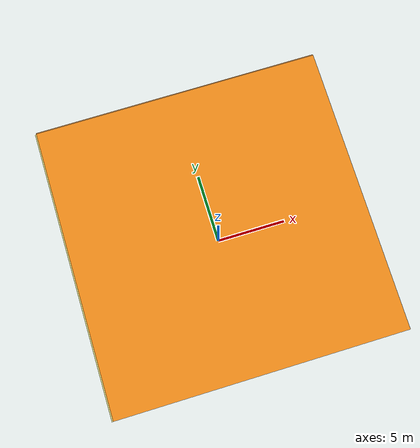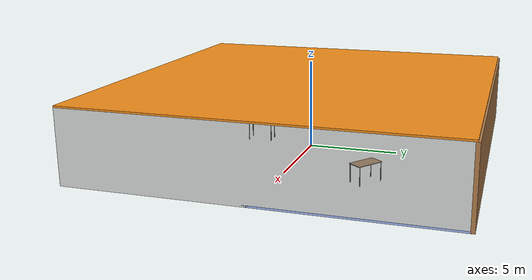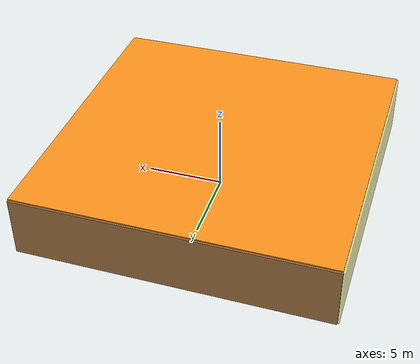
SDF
<sdf version="1.4">
 <world name="default">
  <physics type="ode">
   <max_step_size>0.001</max_step_size>
   <real_time_factor>1</real_time_factor>
   <real_time_update_rate>1000</real_time_update_rate>
   <gravity>0 0 -9.8</gravity>
  </physics>
  <scene><ambient>0.4 0.4 0.4 1</ambient><background>0.7 0.7 0.7 1</background><shadows>1</shadows></scene>
  <model name="Surrounding">
   <static>1</static>
   <link name="Ceiling">
    <collision name="Ceiling_Collision"><geometry><box><size>20 20 0.1</size></box></geometry></collision>
    <visual name="Ceiling_Visual">
     <geometry><box><size>20 20 0.1</size></box></geometry>
     <material>
      <script><uri>file://media/materials/scripts/gazebo.material</uri><name>Gazebo/Orange</name></script>
     </material>
    </visual>
    <pose>0 0 4.05 0 0 0</pose>
   </link>
   <link name="Wall_South">
    <collision name="Wall_South_Collision">
     <geometry><box><size>20 0 4</size></box></geometry>
     <pose>0 0 2 0 -0 0</pose>
    </collision>
    <visual name="Wall_South_Visual">
     <pose>0 0 2 0 -0 0</pose>
     <geometry><box><size>20 0 4</size></box></geometry>
     <material>
      <script>
       <uri>file://media/materials/scripts/gazebo.material</uri>
       <name>Gazebo/YellowTransparent</name>
      </script>
     </material>
    </visual>
    <velocity_decay><linear>0</linear><angular>0</angular></velocity_decay>
    <pose>0 -10 0 0 -0 0</pose>
   </link>
   <link name="Wall_East">
    <collision name="Wall_21_Collision">
     <geometry><box><size>20 0 4</size></box></geometry>
     <pose>0 0 2 0 -0 0</pose>
    </collision>
    <visual name="Wall_21_Visual">
     <pose>0 0 2 0 -0 0</pose>
     <geometry><box><size>20 0 4</size></box></geometry>
     <material>
      <script><uri>file://media/materials/scripts/gazebo.material</uri><name>Gazebo/GreyTransparent</name></script>
     </material>
    </visual>
    <velocity_decay><linear>0</linear><angular>0</angular></velocity_decay>
    <pose>10 0 0 0 -0 1.5708</pose>
   </link>
   <link name="Wall_North">
    <collision name="Wall_22_Collision">
     <geometry><box><size>20 0.2 4</size></box></geometry>
     <pose>0 0 2 0 -0 0</pose>
    </collision>
    <visual name="Wall_22_Visual">
     <pose>0 0 2 0 -0 0</pose>
     <geometry><box><size>20 0.2 4</size></box></geometry>
     <material>
      <script><uri>file://media/materials/scripts/gazebo.material</uri><name>Gazebo/Wood</name></script>
     </material>
    </visual>
    <velocity_decay><linear>0</linear><angular>0</angular></velocity_decay>
    <pose>0 10 0 0 -0 0</pose>
   </link>
   <link name="Wall_West">
    <collision name="Wall_23_Collision">
     <geometry><box><size>20 0.2 4</size></box></geometry>
     <pose>0 0 2 0 -0 0</pose>
    </collision>
    <visual name="Wall_23_Visual">
     <pose>0 0 2 0 -0 0</pose>
     <geometry><box><size>20 0.2 4</size></box></geometry>
     <material>
      <script>
       <uri>file://media/materials/scripts/gazebo.material</uri>
       <name>Gazebo/YellowTransparent</name>
      </script>
     </material>
    </visual>
    <velocity_decay><linear>0</linear><angular>0</angular></velocity_decay>
    <pose>-10 0 0 0 0 -1.5708</pose>
   </link>
   <link name="Ground_link">
    <collision name="collision">
     <pose>0 0 .05 0 -0 0</pose>
     <geometry><box><size>20 20 0.1</size></box></geometry>
    </collision>
    <visual name="visual">
     <pose>0 0 .05 0 -0 0</pose>
     <geometry><box><size>20 20 0.1</size></box></geometry>
     <material>
      <script><uri>file://media/materials/scripts/gazebo.material</uri><name>Gazebo/BlueTransparent</name></script>
     </material>
    </visual>
   </link>
   <static>1</static>
  </model>
  <spherical_coordinates>
   <surface_model>EARTH_WGS84</surface_model>
   <latitude_deg>0</latitude_deg>
   <longitude_deg>0</longitude_deg>
   <elevation>0</elevation>
   <heading_deg>0</heading_deg>
  </spherical_coordinates>
  <light name="lightball_0" type="diffuse">
   <diffuse>0.8 0.8 0.8 1</diffuse>
   <specular>0.2 0.2 0.2 1</specular>
   <attenuation>
    <range>100</range>
    <constant>0.7</constant>
    <linear>0.01</linear>
    <quadratic>0.001</quadratic>
   </attenuation>
   <direction>-0.5 0.1 -0.9</direction>
   <pose>-0.0448505642429 0.609401890787 3.09807494527 0 0 0</pose>
  </light>
  <light name="lightball_1" type="diffuse">
   <diffuse>0.8 0.8 0.8 1</diffuse>
   <specular>0.2 0.2 0.2 1</specular>
   <attenuation>
    <range>100</range>
    <constant>0.7</constant>
    <linear>0.01</linear>
    <quadratic>0.001</quadratic>
   </attenuation>
   <direction>-0.5 0.1 -0.9</direction>
   <pose>-9.36926965655 -5.16492123643 1.52239099535 0 0 0</pose>
  </light>
  <light name="lightball_2" type="diffuse">
   <diffuse>0.8 0.8 0.8 1</diffuse>
   <specular>0.2 0.2 0.2 1</specular>
   <attenuation>
    <range>100</range>
    <constant>0.7</constant>
    <linear>0.01</linear>
    <quadratic>0.001</quadratic>
   </attenuation>
   <direction>-0.5 0.1 -0.9</direction>
   <pose>5.08377751172 -6.03342908355 3.24675951658 0 0 0</pose>
  </light>
  <light name="lightball_3" type="diffuse">
   <diffuse>0.8 0.8 0.8 1</diffuse>
   <specular>0.2 0.2 0.2 1</specular>
   <attenuation>
    <range>100</range>
    <constant>0.7</constant>
    <linear>0.01</linear>
    <quadratic>0.001</quadratic>
   </attenuation>
   <direction>-0.5 0.1 -0.9</direction>
   <pose>-5.81275570611 -5.5731611287 0.958925721529 0 0 0</pose>
  </light>
  <light name="lightball_4" type="diffuse">
   <diffuse>0.8 0.8 0.8 1</diffuse>
   <specular>0.2 0.2 0.2 1</specular>
   <attenuation>
    <range>100</range>
    <constant>0.7</constant>
    <linear>0.01</linear>
    <quadratic>0.001</quadratic>
   </attenuation>
   <direction>-0.5 0.1 -0.9</direction>
   <pose>4.72626723092 -6.14965868423 1.33661898072 0 0 0</pose>
  </light>
  <light name="lightball_5" type="diffuse">
   <diffuse>0.8 0.8 0.8 1</diffuse>
   <specular>0.2 0.2 0.2 1</specular>
   <attenuation>
    <range>100</range>
    <constant>0.7</constant>
    <linear>0.01</linear>
    <quadratic>0.001</quadratic>
   </attenuation>
   <direction>-0.5 0.1 -0.9</direction>
   <pose>-7.97991300915 9.03765358393 0.867644759545 0 0 0</pose>
  </light>
  <light name="lightball_6" type="diffuse">
   <diffuse>0.8 0.8 0.8 1</diffuse>
   <specular>0.2 0.2 0.2 1</specular>
   <attenuation>
    <range>100</range>
    <constant>0.7</constant>
    <linear>0.01</linear>
    <quadratic>0.001</quadratic>
   </attenuation>
   <direction>-0.5 0.1 -0.9</direction>
   <pose>-3.1897451245 -0.180570331451 0.570451954784 0 0 0</pose>
  </light>
  <light name="lightball_7" type="diffuse">
   <diffuse>0.8 0.8 0.8 1</diffuse>
   <specular>0.2 0.2 0.2 1</specular>
   <attenuation>
    <range>100</range>
    <constant>0.7</constant>
    <linear>0.01</linear>
    <quadratic>0.001</quadratic>
   </attenuation>
   <direction>-0.5 0.1 -0.9</direction>
   <pose>-9.09360461621 1.51355441267 2.39597581226 0 0 0</pose>
  </light>
  <light name="lightball_8" type="diffuse">
   <diffuse>0.8 0.8 0.8 1</diffuse>
   <specular>0.2 0.2 0.2 1</specular>
   <attenuation>
    <range>100</range>
    <constant>0.7</constant>
    <linear>0.01</linear>
    <quadratic>0.001</quadratic>
   </attenuation>
   <direction>-0.5 0.1 -0.9</direction>
   <pose>-7.42905038425 1.27664202396 1.50392015893 0 0 0</pose>
  </light>
  <include><uri>model://cabinet</uri><pose>-7.13944332845 -4.63468227692 0 0 0 2.86030805108</pose></include>
  <include><uri>model://table</uri><pose>-0.632040140554 -3.3188249092 0 0 0 1.63715302018</pose></include>
  <include><uri>model://table</uri><pose>5.06155307747 4.34078420857 0 0 0 2.48284807077</pose></include>
 </world>
</sdf>

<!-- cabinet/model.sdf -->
<sdf version="1.5">
  <model name="cabinet">
    <static>true</static>
    <link name="cabinet_bottom_plate">
      <inertial>
        <pose>0 0 -1 0 0 0</pose>
        <inertia>
          <ixx>2.050000</ixx>
          <ixy>0</ixy>
          <ixz>0</ixz>
          <iyy>2.050000</iyy>
          <iyz>0</iyz>
          <izz>2.050000</izz>
        </inertia>
        <mass>25.000000</mass>
      </inertial>
      <collision name="cabinet_bottom_plate_geom">
        <pose>0 0 0.010000 0 0 0</pose>
        <geometry>
          <box>
            <size>0.450000 0.450000 0.020000</size>
          </box>
        </geometry>
      </collision>
      <visual name="cabinet_bottom_plate_geom_visual">
        <pose>0 0 0.010000 0 0 0</pose>
        <geometry>
          <box>
            <size>0.450000 0.450000 0.020000</size>
          </box>
        </geometry>
        <material>
          <script>
            <uri>model://media/materials/scripts/gazebo.material</uri>
            <name>Gazebo/Wood</name>
          </script>
        </material>
      </visual>
      <collision name="cabinet_bottom_plate_geom_cabinet_back_plate">
        <pose>0.235000 0 0.510000 0 0 0</pose>
        <geometry>
          <box>
            <size>0.020000 0.450000 1.020000</size>
          </box>
        </geometry>
      </collision>
      <visual name="cabinet_bottom_plate_geom_cabinet_back_plate_visual">
        <pose>0.235000 0 0.510000 0 0 0</pose>
        <geometry>
          <box>
            <size>0.020000 0.450000 1.020000</size>
          </box>
        </geometry>
        <material>
          <script>
            <uri>model://media/materials/scripts/gazebo.material</uri>
            <name>Gazebo/Wood</name>
          </script>
        </material>
      </visual>
      <collision name="cabinet_bottom_plate_geom_cabinet_left_plate">
        <pose>0 0.235000 0.510000 0 0 0</pose>
        <geometry>
          <box>
            <size>0.450000 0.020000 1.020000</size>
          </box>
        </geometry>
      </collision>
      <visual name="cabinet_bottom_plate_geom_cabinet_left_plate_visual">
        <pose>0 0.235000 0.510000 0 0 0</pose>
        <geometry>
          <box>
            <size>0.450000 0.020000 1.020000</size>
          </box>
        </geometry>
        <material>
          <script>
            <uri>model://media/materials/scripts/gazebo.material</uri>
            <name>Gazebo/Wood</name>
          </script>
        </material>
      </visual>
      <collision name="cabinet_bottom_plate_geom_cabinet_middle_plate">
        <pose>0 0 0.510000 0 0 0</pose>
        <geometry>
          <box>
            <size>0.450000 0.450000 0.020000</size>
          </box>
        </geometry>
      </collision>
      <visual name="cabinet_bottom_plate_geom_cabinet_middle_plate_visual">
        <pose>0 0 0.510000 0 0 0</pose>
        <geometry>
          <box>
            <size>0.450000 0.450000 0.020000</size>
          </box>
        </geometry>
        <material>
          <script>
            <uri>model://media/materials/scripts/gazebo.material</uri>
            <name>Gazebo/Wood</name>
          </script>
        </material>
      </visual>
      <collision name="cabinet_bottom_plate_geom_cabinet_right_plate">
        <pose>0 -0.235000 0.510000 0 0 0</pose>
        <geometry>
          <box>
            <size>0.450000 0.020000 1.020000</size>
          </box>
        </geometry>
      </collision>
      <visual name="cabinet_bottom_plate_geom_cabinet_right_plate_visual">
        <pose>0 -0.235000 0.510000 0 0 0</pose>
        <geometry>
          <box>
            <size>0.450000 0.020000 1.020000</size>
          </box>
        </geometry>
        <material>
          <script>
            <uri>model://media/materials/scripts/gazebo.material</uri>
            <name>Gazebo/Wood</name>
          </script>
        </material>
      </visual>
      <collision name="cabinet_bottom_plate_geom_cabinet_top_plate">
        <pose>0 0 1.010000 0 0 0</pose>
        <geometry>
          <box>
            <size>0.450000 0.450000 0.020000</size>
          </box>
        </geometry>
      </collision>
      <visual name="cabinet_bottom_plate_geom_cabinet_top_plate_visual">
        <pose>0 0 1.010000 0 0 0</pose>
        <geometry>
          <box>
            <size>0.450000 0.450000 0.020000</size>
          </box>
        </geometry>
        <material>
          <script>
            <uri>model://media/materials/scripts/gazebo.material</uri>
            <name>Gazebo/Wood</name>
          </script>
        </material>
      </visual>
    </link>
  </model>
</sdf>

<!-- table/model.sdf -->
<sdf version="1.5">
  <model name="table">
    <static>true</static>
    <link name="link">
      <collision name="surface">
        <pose>0 0 1.0 0 0 0</pose>
        <geometry>
          <box>
            <size>1.5 0.8 0.03</size>
          </box>
        </geometry>
        <surface>
          <friction>
            <ode>
              <mu>0.6</mu>
              <mu2>0.6</mu2>
            </ode>
          </friction>
        </surface>
      </collision>
      <visual name="visual1">
        <pose>0 0 1.0 0 0 0</pose>
        <geometry>
          <box>
            <size>1.5 0.8 0.03</size>
          </box>
        </geometry>
        <material>
          <script>
            <uri>model://media/materials/scripts/gazebo.material</uri>
            <name>Gazebo/Wood</name>
          </script>
        </material>
      </visual>
      <collision name="front_left_leg">
        <pose>0.68 0.38 0.5 0 0 0</pose>
        <geometry>
          <cylinder>
            <radius>0.02</radius>
            <length>1.0</length>
          </cylinder>
        </geometry>
      </collision>
      <visual name="front_left_leg">
        <pose>0.68 0.38 0.5 0 0 0</pose>
        <geometry>
          <cylinder>
            <radius>0.02</radius>
            <length>1.0</length>
          </cylinder>
        </geometry>
        <material>
          <script>
            <uri>model://media/materials/scripts/gazebo.material</uri>
            <name>Gazebo/Grey</name>
          </script>
        </material>
      </visual>
      <collision name="front_right_leg">
        <pose>0.68 -0.38 0.5 0 0 0</pose>
        <geometry>
          <cylinder>
            <radius>0.02</radius>
            <length>1.0</length>
          </cylinder>
        </geometry>
      </collision>
      <visual name="front_right_leg">
        <pose>0.68 -0.38 0.5 0 0 0</pose>
        <geometry>
          <cylinder>
            <radius>0.02</radius>
            <length>1.0</length>
          </cylinder>
        </geometry>
        <material>
          <script>
            <uri>model://media/materials/scripts/gazebo.material</uri>
            <name>Gazebo/Grey</name>
          </script>
        </material>
      </visual>
      <collision name="back_right_leg">
        <pose>-0.68 -0.38 0.5 0 0 0</pose>
        <geometry>
          <cylinder>
            <radius>0.02</radius>
            <length>1.0</length>
          </cylinder>
        </geometry>
      </collision>
      <visual name="back_right_leg">
        <pose>-0.68 -0.38 0.5 0 0 0</pose>
        <geometry>
          <cylinder>
            <radius>0.02</radius>
            <length>1.0</length>
          </cylinder>
        </geometry>
        <material>
          <script>
            <uri>model://media/materials/scripts/gazebo.material</uri>
            <name>Gazebo/Grey</name>
          </script>
        </material>
      </visual>
      <collision name="back_left_leg">
        <pose>-0.68 0.38 0.5 0 0 0</pose>
        <geometry>
          <cylinder>
            <radius>0.02</radius>
            <length>1.0</length>
          </cylinder>
        </geometry>
      </collision>
      <visual name="back_left_leg">
        <pose>-0.68 0.38 0.5 0 0 0</pose>
        <geometry>
          <cylinder>
            <radius>0.02</radius>
            <length>1.0</length>
          </cylinder>
        </geometry>
        <material>
          <script>
            <uri>model://media/materials/scripts/gazebo.material</uri>
            <name>Gazebo/Grey</name>
          </script>
        </material>
      </visual>
    </link>
  </model>
</sdf>
